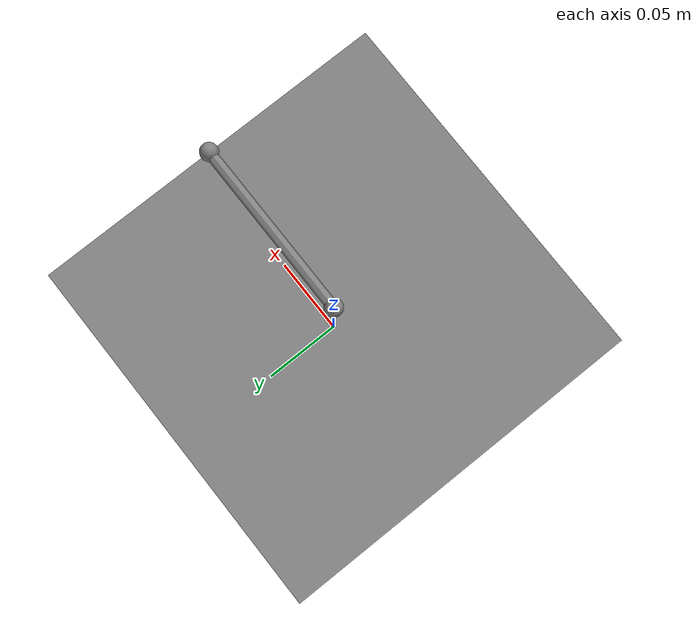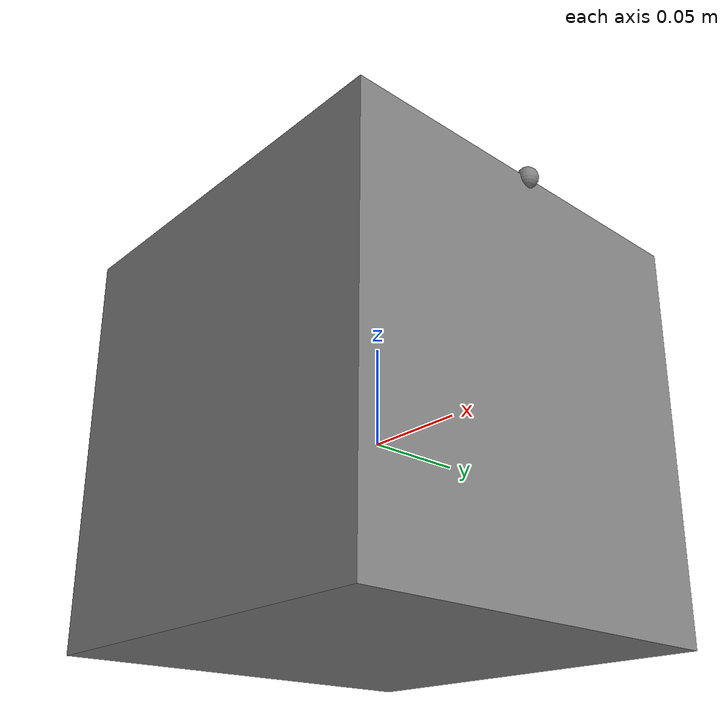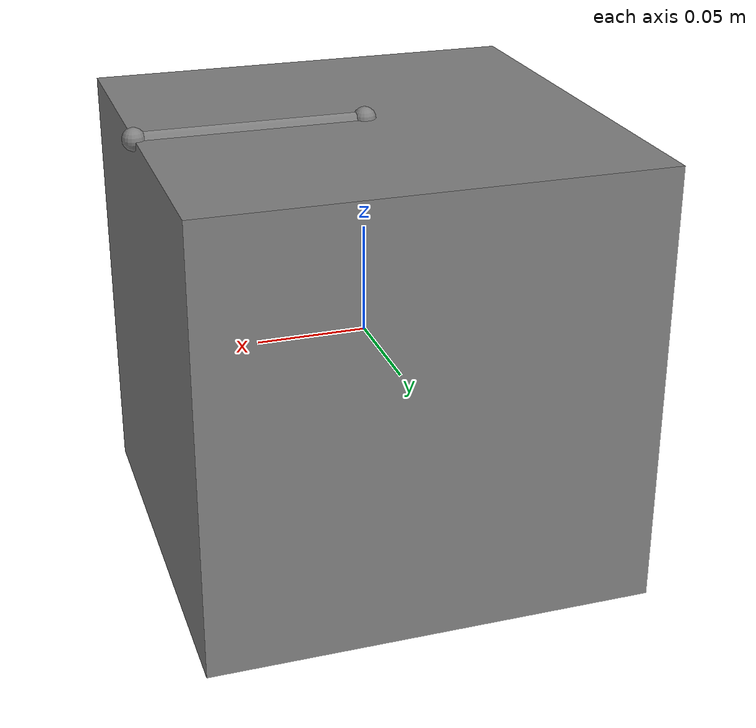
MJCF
<mujoco model="actuated">
  <compiler angle="degree"/>
  <worldbody>
    <body name="base">
      <joint name="slide1" type="slide" axis="1 0 0" range="-0.5 0.5"/>
      <geom name="box1" type="box" size="0.1 0.1 0.1"/>
      <site name="s1" pos="0 0 0.1"/>
      <site name="s2" pos="0.1 0 0.1"/>
      <camera name="wrist" pos="0 0 0.3" fovy="60"/>
      <body name="finger">
        <joint name="hinge1" type="hinge" axis="0 1 0" range="0 45"/>
        <geom name="tip" type="sphere" size="0.02"/>
      </body>
    </body>
  </worldbody>
  <tendon>
    <fixed name="coupler">
      <joint joint="slide1" coef="1"/>
      <joint joint="hinge1" coef="-0.5"/>
    </fixed>
    <spatial name="cable" range="0 0.4" stiffness="7" damping="0.3">
      <site site="s1"/>
      <site site="s2"/>
    </spatial>
  </tendon>
  <actuator>
    <motor name="m1" joint="slide1" gear="10" ctrlrange="-1 1" forcerange="-50 50"/>
    <position name="p1" joint="hinge1" kp="30" kv="2" ctrlrange="0 0.7"/>
    <velocity name="v1" joint="hinge1" kv="4"/>
    <general name="g1" tendon="coupler" gainprm="5 0 0 0 0 0 0 0 0 0" biasprm="0 -3 0"/>
  </actuator>
  <sensor>
    <jointpos joint="hinge1" noise="0.001"/>
    <jointvel name="hv" joint="hinge1" cutoff="10"/>
    <actuatorfrc actuator="m1"/>
    <framepos objtype="site" objname="s1"/>
    <framequat objtype="body" objname="finger"/>
    <accelerometer site="s1"/>
    <gyro site="s1"/>
    <force site="s2"/>
    <torque site="s2"/>
    <touch site="s2"/>
    <rangefinder site="s1"/>
  </sensor>
</mujoco>
